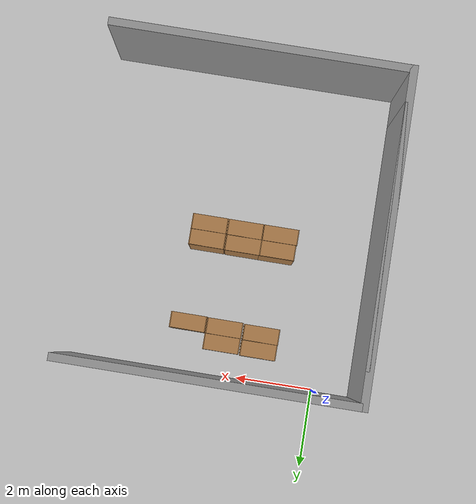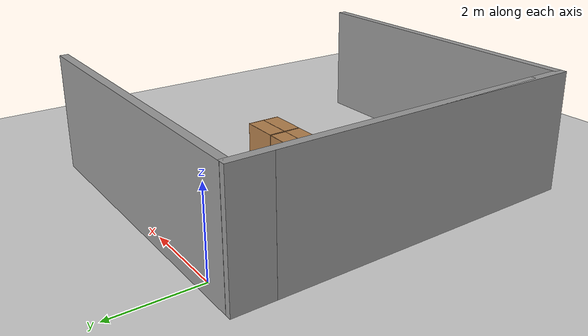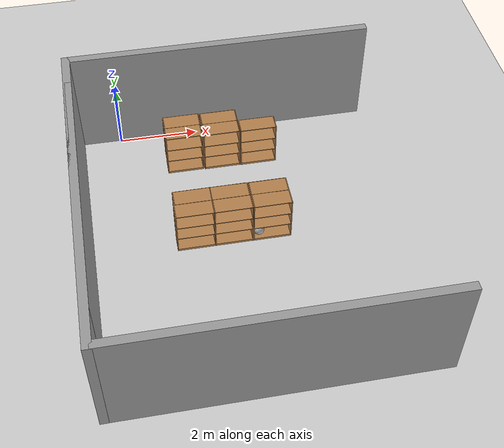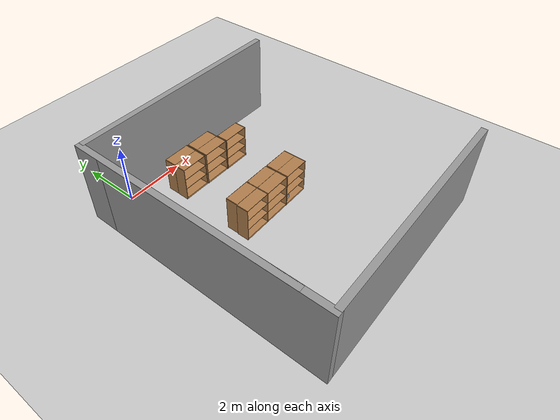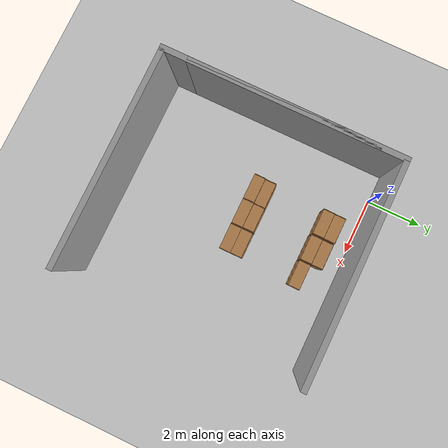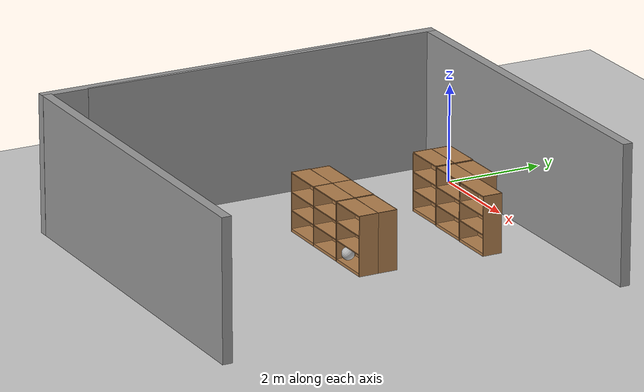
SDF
<sdf version="1.6">
 <world name="default">
  <model name="ground_plane">
   <static>1</static>
   <link name="link">
    <collision name="collision">
     <geometry><plane><normal>0 0 1</normal><size>100 100</size></plane></geometry>
     <surface><friction><ode><mu>100</mu><mu2>50</mu2></ode></friction></surface>
    </collision>
    <visual name="visual">
     <cast_shadows>0</cast_shadows>
     <geometry><plane><normal>0 0 1</normal><size>100 100</size></plane></geometry>
     <material>
      <script><uri>file://media/materials/scripts/gazebo.material</uri><name>Gazebo/Grey</name></script>
     </material>
    </visual>
   </link>
  </model>
  <model name="bookshelf">
   <static>1</static>
   <link name="link">
    <inertial><mass>1</mass></inertial>
    <collision name="back">
     <pose>0 0.005 0.6 0 -0 0</pose>
     <geometry><box><size>0.9 0.01 1.2</size></box></geometry>
    </collision>
    <visual name="visual1">
     <pose>0 0.005 0.6 0 -0 0</pose>
     <geometry><box><size>0.9 0.01 1.2</size></box></geometry>
     <material>
      <script><uri>file://media/materials/scripts/gazebo.material</uri><name>Gazebo/Wood</name></script>
     </material>
    </visual>
    <collision name="left_side">
     <pose>0.45 -0.195 0.6 0 -0 0</pose>
     <geometry><box><size>0.02 0.4 1.2</size></box></geometry>
    </collision>
    <visual name="visual2">
     <pose>0.45 -0.195 0.6 0 -0 0</pose>
     <geometry><box><size>0.02 0.4 1.2</size></box></geometry>
     <material>
      <script><uri>file://media/materials/scripts/gazebo.material</uri><name>Gazebo/Wood</name></script>
     </material>
    </visual>
    <collision name="right_side">
     <pose>-0.45 -0.195 0.6 0 -0 0</pose>
     <geometry><box><size>0.02 0.4 1.2</size></box></geometry>
    </collision>
    <visual name="visual3">
     <pose>-0.45 -0.195 0.6 0 -0 0</pose>
     <geometry><box><size>0.02 0.4 1.2</size></box></geometry>
     <material>
      <script><uri>file://media/materials/scripts/gazebo.material</uri><name>Gazebo/Wood</name></script>
     </material>
    </visual>
    <collision name="bottom">
     <pose>0 -0.195 0.03 0 -0 0</pose>
     <geometry><box><size>0.88 0.4 0.06</size></box></geometry>
    </collision>
    <visual name="visual4">
     <pose>0 -0.195 0.03 0 -0 0</pose>
     <geometry><box><size>0.88 0.4 0.06</size></box></geometry>
     <material>
      <script><uri>file://media/materials/scripts/gazebo.material</uri><name>Gazebo/Wood</name></script>
     </material>
    </visual>
    <collision name="top">
     <pose>0 -0.195 1.19 0 -0 0</pose>
     <geometry><box><size>0.88 0.4 0.02</size></box></geometry>
    </collision>
    <visual name="visual5">
     <pose>0 -0.195 1.19 0 -0 0</pose>
     <geometry><box><size>0.88 0.4 0.02</size></box></geometry>
     <material>
      <script><uri>file://media/materials/scripts/gazebo.material</uri><name>Gazebo/Wood</name></script>
     </material>
    </visual>
    <collision name="low_shelf">
     <pose>0 -0.195 0.43 0 -0 0</pose>
     <geometry><box><size>0.88 0.4 0.02</size></box></geometry>
    </collision>
    <visual name="visual6">
     <pose>0 -0.195 0.43 0 -0 0</pose>
     <geometry><box><size>0.88 0.4 0.02</size></box></geometry>
     <material>
      <script><uri>file://media/materials/scripts/gazebo.material</uri><name>Gazebo/Wood</name></script>
     </material>
    </visual>
    <collision name="high_shelf">
     <pose>0 -0.195 0.8 0 -0 0</pose>
     <geometry><box><size>0.88 0.4 0.02</size></box></geometry>
    </collision>
    <visual name="visual7">
     <pose>0 -0.195 0.8 0 -0 0</pose>
     <geometry><box><size>0.88 0.4 0.02</size></box></geometry>
     <material>
      <script><uri>file://media/materials/scripts/gazebo.material</uri><name>Gazebo/Wood</name></script>
     </material>
    </visual>
   </link>
   <pose>1.54815 -1.01147 0 0 -0 0</pose>
  </model>
  <model name="bookshelf_clone">
   <static>1</static>
   <link name="link">
    <inertial><mass>1</mass></inertial>
    <collision name="back">
     <pose>0 0.005 0.6 0 -0 0</pose>
     <geometry><box><size>0.9 0.01 1.2</size></box></geometry>
    </collision>
    <visual name="visual1">
     <pose>0 0.005 0.6 0 -0 0</pose>
     <geometry><box><size>0.9 0.01 1.2</size></box></geometry>
     <material>
      <script><uri>file://media/materials/scripts/gazebo.material</uri><name>Gazebo/Wood</name></script>
     </material>
    </visual>
    <collision name="left_side">
     <pose>0.45 -0.195 0.6 0 -0 0</pose>
     <geometry><box><size>0.02 0.4 1.2</size></box></geometry>
    </collision>
    <visual name="visual2">
     <pose>0.45 -0.195 0.6 0 -0 0</pose>
     <geometry><box><size>0.02 0.4 1.2</size></box></geometry>
     <material>
      <script><uri>file://media/materials/scripts/gazebo.material</uri><name>Gazebo/Wood</name></script>
     </material>
    </visual>
    <collision name="right_side">
     <pose>-0.45 -0.195 0.6 0 -0 0</pose>
     <geometry><box><size>0.02 0.4 1.2</size></box></geometry>
    </collision>
    <visual name="visual3">
     <pose>-0.45 -0.195 0.6 0 -0 0</pose>
     <geometry><box><size>0.02 0.4 1.2</size></box></geometry>
     <material>
      <script><uri>file://media/materials/scripts/gazebo.material</uri><name>Gazebo/Wood</name></script>
     </material>
    </visual>
    <collision name="bottom">
     <pose>0 -0.195 0.03 0 -0 0</pose>
     <geometry><box><size>0.88 0.4 0.06</size></box></geometry>
    </collision>
    <visual name="visual4">
     <pose>0 -0.195 0.03 0 -0 0</pose>
     <geometry><box><size>0.88 0.4 0.06</size></box></geometry>
     <material>
      <script><uri>file://media/materials/scripts/gazebo.material</uri><name>Gazebo/Wood</name></script>
     </material>
    </visual>
    <collision name="top">
     <pose>0 -0.195 1.19 0 -0 0</pose>
     <geometry><box><size>0.88 0.4 0.02</size></box></geometry>
    </collision>
    <visual name="visual5">
     <pose>0 -0.195 1.19 0 -0 0</pose>
     <geometry><box><size>0.88 0.4 0.02</size></box></geometry>
     <material>
      <script><uri>file://media/materials/scripts/gazebo.material</uri><name>Gazebo/Wood</name></script>
     </material>
    </visual>
    <collision name="low_shelf">
     <pose>0 -0.195 0.43 0 -0 0</pose>
     <geometry><box><size>0.88 0.4 0.02</size></box></geometry>
    </collision>
    <visual name="visual6">
     <pose>0 -0.195 0.43 0 -0 0</pose>
     <geometry><box><size>0.88 0.4 0.02</size></box></geometry>
     <material>
      <script><uri>file://media/materials/scripts/gazebo.material</uri><name>Gazebo/Wood</name></script>
     </material>
    </visual>
    <collision name="high_shelf">
     <pose>0 -0.195 0.8 0 -0 0</pose>
     <geometry><box><size>0.88 0.4 0.02</size></box></geometry>
    </collision>
    <visual name="visual7">
     <pose>0 -0.195 0.8 0 -0 0</pose>
     <geometry><box><size>0.88 0.4 0.02</size></box></geometry>
     <material>
      <script><uri>file://media/materials/scripts/gazebo.material</uri><name>Gazebo/Wood</name></script>
     </material>
    </visual>
   </link>
   <pose>2.49358 -1.02826 0 0 -0 0</pose>
  </model>
  <model name="bookshelf_clone_0">
   <static>1</static>
   <link name="link">
    <inertial><mass>1</mass></inertial>
    <collision name="back">
     <pose>0 0.005 0.6 0 -0 0</pose>
     <geometry><box><size>0.9 0.01 1.2</size></box></geometry>
    </collision>
    <visual name="visual1">
     <pose>0 0.005 0.6 0 -0 0</pose>
     <geometry><box><size>0.9 0.01 1.2</size></box></geometry>
     <material>
      <script><uri>file://media/materials/scripts/gazebo.material</uri><name>Gazebo/Wood</name></script>
     </material>
    </visual>
    <collision name="left_side">
     <pose>0.45 -0.195 0.6 0 -0 0</pose>
     <geometry><box><size>0.02 0.4 1.2</size></box></geometry>
    </collision>
    <visual name="visual2">
     <pose>0.45 -0.195 0.6 0 -0 0</pose>
     <geometry><box><size>0.02 0.4 1.2</size></box></geometry>
     <material>
      <script><uri>file://media/materials/scripts/gazebo.material</uri><name>Gazebo/Wood</name></script>
     </material>
    </visual>
    <collision name="right_side">
     <pose>-0.45 -0.195 0.6 0 -0 0</pose>
     <geometry><box><size>0.02 0.4 1.2</size></box></geometry>
    </collision>
    <visual name="visual3">
     <pose>-0.45 -0.195 0.6 0 -0 0</pose>
     <geometry><box><size>0.02 0.4 1.2</size></box></geometry>
     <material>
      <script><uri>file://media/materials/scripts/gazebo.material</uri><name>Gazebo/Wood</name></script>
     </material>
    </visual>
    <collision name="bottom">
     <pose>0 -0.195 0.03 0 -0 0</pose>
     <geometry><box><size>0.88 0.4 0.06</size></box></geometry>
    </collision>
    <visual name="visual4">
     <pose>0 -0.195 0.03 0 -0 0</pose>
     <geometry><box><size>0.88 0.4 0.06</size></box></geometry>
     <material>
      <script><uri>file://media/materials/scripts/gazebo.material</uri><name>Gazebo/Wood</name></script>
     </material>
    </visual>
    <collision name="top">
     <pose>0 -0.195 1.19 0 -0 0</pose>
     <geometry><box><size>0.88 0.4 0.02</size></box></geometry>
    </collision>
    <visual name="visual5">
     <pose>0 -0.195 1.19 0 -0 0</pose>
     <geometry><box><size>0.88 0.4 0.02</size></box></geometry>
     <material>
      <script><uri>file://media/materials/scripts/gazebo.material</uri><name>Gazebo/Wood</name></script>
     </material>
    </visual>
    <collision name="low_shelf">
     <pose>0 -0.195 0.43 0 -0 0</pose>
     <geometry><box><size>0.88 0.4 0.02</size></box></geometry>
    </collision>
    <visual name="visual6">
     <pose>0 -0.195 0.43 0 -0 0</pose>
     <geometry><box><size>0.88 0.4 0.02</size></box></geometry>
     <material>
      <script><uri>file://media/materials/scripts/gazebo.material</uri><name>Gazebo/Wood</name></script>
     </material>
    </visual>
    <collision name="high_shelf">
     <pose>0 -0.195 0.8 0 -0 0</pose>
     <geometry><box><size>0.88 0.4 0.02</size></box></geometry>
    </collision>
    <visual name="visual7">
     <pose>0 -0.195 0.8 0 -0 0</pose>
     <geometry><box><size>0.88 0.4 0.02</size></box></geometry>
     <material>
      <script><uri>file://media/materials/scripts/gazebo.material</uri><name>Gazebo/Wood</name></script>
     </material>
    </visual>
   </link>
   <pose>3.42671 -1.03872 0 0 -0 0</pose>
  </model>
  <model name="bookshelf_clone_3">
   <static>1</static>
   <link name="link">
    <inertial><mass>1</mass></inertial>
    <collision name="back">
     <pose>0 0.005 0.6 0 -0 0</pose>
     <geometry><box><size>0.9 0.01 1.2</size></box></geometry>
    </collision>
    <visual name="visual1">
     <pose>0 0.005 0.6 0 -0 0</pose>
     <geometry><box><size>0.9 0.01 1.2</size></box></geometry>
     <material>
      <script><uri>file://media/materials/scripts/gazebo.material</uri><name>Gazebo/Wood</name></script>
     </material>
    </visual>
    <collision name="left_side">
     <pose>0.45 -0.195 0.6 0 -0 0</pose>
     <geometry><box><size>0.02 0.4 1.2</size></box></geometry>
    </collision>
    <visual name="visual2">
     <pose>0.45 -0.195 0.6 0 -0 0</pose>
     <geometry><box><size>0.02 0.4 1.2</size></box></geometry>
     <material>
      <script><uri>file://media/materials/scripts/gazebo.material</uri><name>Gazebo/Wood</name></script>
     </material>
    </visual>
    <collision name="right_side">
     <pose>-0.45 -0.195 0.6 0 -0 0</pose>
     <geometry><box><size>0.02 0.4 1.2</size></box></geometry>
    </collision>
    <visual name="visual3">
     <pose>-0.45 -0.195 0.6 0 -0 0</pose>
     <geometry><box><size>0.02 0.4 1.2</size></box></geometry>
     <material>
      <script><uri>file://media/materials/scripts/gazebo.material</uri><name>Gazebo/Wood</name></script>
     </material>
    </visual>
    <collision name="bottom">
     <pose>0 -0.195 0.03 0 -0 0</pose>
     <geometry><box><size>0.88 0.4 0.06</size></box></geometry>
    </collision>
    <visual name="visual4">
     <pose>0 -0.195 0.03 0 -0 0</pose>
     <geometry><box><size>0.88 0.4 0.06</size></box></geometry>
     <material>
      <script><uri>file://media/materials/scripts/gazebo.material</uri><name>Gazebo/Wood</name></script>
     </material>
    </visual>
    <collision name="top">
     <pose>0 -0.195 1.19 0 -0 0</pose>
     <geometry><box><size>0.88 0.4 0.02</size></box></geometry>
    </collision>
    <visual name="visual5">
     <pose>0 -0.195 1.19 0 -0 0</pose>
     <geometry><box><size>0.88 0.4 0.02</size></box></geometry>
     <material>
      <script><uri>file://media/materials/scripts/gazebo.material</uri><name>Gazebo/Wood</name></script>
     </material>
    </visual>
    <collision name="low_shelf">
     <pose>0 -0.195 0.43 0 -0 0</pose>
     <geometry><box><size>0.88 0.4 0.02</size></box></geometry>
    </collision>
    <visual name="visual6">
     <pose>0 -0.195 0.43 0 -0 0</pose>
     <geometry><box><size>0.88 0.4 0.02</size></box></geometry>
     <material>
      <script><uri>file://media/materials/scripts/gazebo.material</uri><name>Gazebo/Wood</name></script>
     </material>
    </visual>
    <collision name="high_shelf">
     <pose>0 -0.195 0.8 0 -0 0</pose>
     <geometry><box><size>0.88 0.4 0.02</size></box></geometry>
    </collision>
    <visual name="visual7">
     <pose>0 -0.195 0.8 0 -0 0</pose>
     <geometry><box><size>0.88 0.4 0.02</size></box></geometry>
     <material>
      <script><uri>file://media/materials/scripts/gazebo.material</uri><name>Gazebo/Wood</name></script>
     </material>
    </visual>
   </link>
   <pose>1.45828 -3.59625 0 0 -0 0</pose>
  </model>
  <model name="bookshelf_clone_4">
   <static>1</static>
   <link name="link">
    <inertial><mass>1</mass></inertial>
    <collision name="back">
     <pose>0 0.005 0.6 0 -0 0</pose>
     <geometry><box><size>0.9 0.01 1.2</size></box></geometry>
    </collision>
    <visual name="visual1">
     <pose>0 0.005 0.6 0 -0 0</pose>
     <geometry><box><size>0.9 0.01 1.2</size></box></geometry>
     <material>
      <script><uri>file://media/materials/scripts/gazebo.material</uri><name>Gazebo/Wood</name></script>
     </material>
    </visual>
    <collision name="left_side">
     <pose>0.45 -0.195 0.6 0 -0 0</pose>
     <geometry><box><size>0.02 0.4 1.2</size></box></geometry>
    </collision>
    <visual name="visual2">
     <pose>0.45 -0.195 0.6 0 -0 0</pose>
     <geometry><box><size>0.02 0.4 1.2</size></box></geometry>
     <material>
      <script><uri>file://media/materials/scripts/gazebo.material</uri><name>Gazebo/Wood</name></script>
     </material>
    </visual>
    <collision name="right_side">
     <pose>-0.45 -0.195 0.6 0 -0 0</pose>
     <geometry><box><size>0.02 0.4 1.2</size></box></geometry>
    </collision>
    <visual name="visual3">
     <pose>-0.45 -0.195 0.6 0 -0 0</pose>
     <geometry><box><size>0.02 0.4 1.2</size></box></geometry>
     <material>
      <script><uri>file://media/materials/scripts/gazebo.material</uri><name>Gazebo/Wood</name></script>
     </material>
    </visual>
    <collision name="bottom">
     <pose>0 -0.195 0.03 0 -0 0</pose>
     <geometry><box><size>0.88 0.4 0.06</size></box></geometry>
    </collision>
    <visual name="visual4">
     <pose>0 -0.195 0.03 0 -0 0</pose>
     <geometry><box><size>0.88 0.4 0.06</size></box></geometry>
     <material>
      <script><uri>file://media/materials/scripts/gazebo.material</uri><name>Gazebo/Wood</name></script>
     </material>
    </visual>
    <collision name="top">
     <pose>0 -0.195 1.19 0 -0 0</pose>
     <geometry><box><size>0.88 0.4 0.02</size></box></geometry>
    </collision>
    <visual name="visual5">
     <pose>0 -0.195 1.19 0 -0 0</pose>
     <geometry><box><size>0.88 0.4 0.02</size></box></geometry>
     <material>
      <script><uri>file://media/materials/scripts/gazebo.material</uri><name>Gazebo/Wood</name></script>
     </material>
    </visual>
    <collision name="low_shelf">
     <pose>0 -0.195 0.43 0 -0 0</pose>
     <geometry><box><size>0.88 0.4 0.02</size></box></geometry>
    </collision>
    <visual name="visual6">
     <pose>0 -0.195 0.43 0 -0 0</pose>
     <geometry><box><size>0.88 0.4 0.02</size></box></geometry>
     <material>
      <script><uri>file://media/materials/scripts/gazebo.material</uri><name>Gazebo/Wood</name></script>
     </material>
    </visual>
    <collision name="high_shelf">
     <pose>0 -0.195 0.8 0 -0 0</pose>
     <geometry><box><size>0.88 0.4 0.02</size></box></geometry>
    </collision>
    <visual name="visual7">
     <pose>0 -0.195 0.8 0 -0 0</pose>
     <geometry><box><size>0.88 0.4 0.02</size></box></geometry>
     <material>
      <script><uri>file://media/materials/scripts/gazebo.material</uri><name>Gazebo/Wood</name></script>
     </material>
    </visual>
   </link>
   <pose>2.36721 -3.5964 0 0 -0 0</pose>
  </model>
  <model name="bookshelf_clone_5">
   <static>1</static>
   <link name="link">
    <inertial><mass>1</mass></inertial>
    <collision name="back">
     <pose>0 0.005 0.6 0 -0 0</pose>
     <geometry><box><size>0.9 0.01 1.2</size></box></geometry>
    </collision>
    <visual name="visual1">
     <pose>0 0.005 0.6 0 -0 0</pose>
     <geometry><box><size>0.9 0.01 1.2</size></box></geometry>
     <material>
      <script><uri>file://media/materials/scripts/gazebo.material</uri><name>Gazebo/Wood</name></script>
     </material>
    </visual>
    <collision name="left_side">
     <pose>0.45 -0.195 0.6 0 -0 0</pose>
     <geometry><box><size>0.02 0.4 1.2</size></box></geometry>
    </collision>
    <visual name="visual2">
     <pose>0.45 -0.195 0.6 0 -0 0</pose>
     <geometry><box><size>0.02 0.4 1.2</size></box></geometry>
     <material>
      <script><uri>file://media/materials/scripts/gazebo.material</uri><name>Gazebo/Wood</name></script>
     </material>
    </visual>
    <collision name="right_side">
     <pose>-0.45 -0.195 0.6 0 -0 0</pose>
     <geometry><box><size>0.02 0.4 1.2</size></box></geometry>
    </collision>
    <visual name="visual3">
     <pose>-0.45 -0.195 0.6 0 -0 0</pose>
     <geometry><box><size>0.02 0.4 1.2</size></box></geometry>
     <material>
      <script><uri>file://media/materials/scripts/gazebo.material</uri><name>Gazebo/Wood</name></script>
     </material>
    </visual>
    <collision name="bottom">
     <pose>0 -0.195 0.03 0 -0 0</pose>
     <geometry><box><size>0.88 0.4 0.06</size></box></geometry>
    </collision>
    <visual name="visual4">
     <pose>0 -0.195 0.03 0 -0 0</pose>
     <geometry><box><size>0.88 0.4 0.06</size></box></geometry>
     <material>
      <script><uri>file://media/materials/scripts/gazebo.material</uri><name>Gazebo/Wood</name></script>
     </material>
    </visual>
    <collision name="top">
     <pose>0 -0.195 1.19 0 -0 0</pose>
     <geometry><box><size>0.88 0.4 0.02</size></box></geometry>
    </collision>
    <visual name="visual5">
     <pose>0 -0.195 1.19 0 -0 0</pose>
     <geometry><box><size>0.88 0.4 0.02</size></box></geometry>
     <material>
      <script><uri>file://media/materials/scripts/gazebo.material</uri><name>Gazebo/Wood</name></script>
     </material>
    </visual>
    <collision name="low_shelf">
     <pose>0 -0.195 0.43 0 -0 0</pose>
     <geometry><box><size>0.88 0.4 0.02</size></box></geometry>
    </collision>
    <visual name="visual6">
     <pose>0 -0.195 0.43 0 -0 0</pose>
     <geometry><box><size>0.88 0.4 0.02</size></box></geometry>
     <material>
      <script><uri>file://media/materials/scripts/gazebo.material</uri><name>Gazebo/Wood</name></script>
     </material>
    </visual>
    <collision name="high_shelf">
     <pose>0 -0.195 0.8 0 -0 0</pose>
     <geometry><box><size>0.88 0.4 0.02</size></box></geometry>
    </collision>
    <visual name="visual7">
     <pose>0 -0.195 0.8 0 -0 0</pose>
     <geometry><box><size>0.88 0.4 0.02</size></box></geometry>
     <material>
      <script><uri>file://media/materials/scripts/gazebo.material</uri><name>Gazebo/Wood</name></script>
     </material>
    </visual>
   </link>
   <pose>3.29215 -3.59972 0 0 -0 0</pose>
  </model>
  <model name="bookshelf_clone_10">
   <static>1</static>
   <link name="link">
    <inertial><mass>1</mass></inertial>
    <collision name="back">
     <pose>0 0.005 0.6 0 -0 0</pose>
     <geometry><box><size>0.9 0.01 1.2</size></box></geometry>
    </collision>
    <visual name="visual1">
     <pose>0 0.005 0.6 0 -0 0</pose>
     <geometry><box><size>0.9 0.01 1.2</size></box></geometry>
     <material>
      <script><uri>file://media/materials/scripts/gazebo.material</uri><name>Gazebo/Wood</name></script>
     </material>
    </visual>
    <collision name="left_side">
     <pose>0.45 -0.195 0.6 0 -0 0</pose>
     <geometry><box><size>0.02 0.4 1.2</size></box></geometry>
    </collision>
    <visual name="visual2">
     <pose>0.45 -0.195 0.6 0 -0 0</pose>
     <geometry><box><size>0.02 0.4 1.2</size></box></geometry>
     <material>
      <script><uri>file://media/materials/scripts/gazebo.material</uri><name>Gazebo/Wood</name></script>
     </material>
    </visual>
    <collision name="right_side">
     <pose>-0.45 -0.195 0.6 0 -0 0</pose>
     <geometry><box><size>0.02 0.4 1.2</size></box></geometry>
    </collision>
    <visual name="visual3">
     <pose>-0.45 -0.195 0.6 0 -0 0</pose>
     <geometry><box><size>0.02 0.4 1.2</size></box></geometry>
     <material>
      <script><uri>file://media/materials/scripts/gazebo.material</uri><name>Gazebo/Wood</name></script>
     </material>
    </visual>
    <collision name="bottom">
     <pose>0 -0.195 0.03 0 -0 0</pose>
     <geometry><box><size>0.88 0.4 0.06</size></box></geometry>
    </collision>
    <visual name="visual4">
     <pose>0 -0.195 0.03 0 -0 0</pose>
     <geometry><box><size>0.88 0.4 0.06</size></box></geometry>
     <material>
      <script><uri>file://media/materials/scripts/gazebo.material</uri><name>Gazebo/Wood</name></script>
     </material>
    </visual>
    <collision name="top">
     <pose>0 -0.195 1.19 0 -0 0</pose>
     <geometry><box><size>0.88 0.4 0.02</size></box></geometry>
    </collision>
    <visual name="visual5">
     <pose>0 -0.195 1.19 0 -0 0</pose>
     <geometry><box><size>0.88 0.4 0.02</size></box></geometry>
     <material>
      <script><uri>file://media/materials/scripts/gazebo.material</uri><name>Gazebo/Wood</name></script>
     </material>
    </visual>
    <collision name="low_shelf">
     <pose>0 -0.195 0.43 0 -0 0</pose>
     <geometry><box><size>0.88 0.4 0.02</size></box></geometry>
    </collision>
    <visual name="visual6">
     <pose>0 -0.195 0.43 0 -0 0</pose>
     <geometry><box><size>0.88 0.4 0.02</size></box></geometry>
     <material>
      <script><uri>file://media/materials/scripts/gazebo.material</uri><name>Gazebo/Wood</name></script>
     </material>
    </visual>
    <collision name="high_shelf">
     <pose>0 -0.195 0.8 0 -0 0</pose>
     <geometry><box><size>0.88 0.4 0.02</size></box></geometry>
    </collision>
    <visual name="visual7">
     <pose>0 -0.195 0.8 0 -0 0</pose>
     <geometry><box><size>0.88 0.4 0.02</size></box></geometry>
     <material>
      <script><uri>file://media/materials/scripts/gazebo.material</uri><name>Gazebo/Wood</name></script>
     </material>
    </visual>
   </link>
   <pose>3.29098 -3.20132 0 0 -0 0</pose>
  </model>
  <model name="bookshelf_clone_11">
   <static>1</static>
   <link name="link">
    <inertial><mass>1</mass></inertial>
    <collision name="back">
     <pose>0 0.005 0.6 0 -0 0</pose>
     <geometry><box><size>0.9 0.01 1.2</size></box></geometry>
    </collision>
    <visual name="visual1">
     <pose>0 0.005 0.6 0 -0 0</pose>
     <geometry><box><size>0.9 0.01 1.2</size></box></geometry>
     <material>
      <script><uri>file://media/materials/scripts/gazebo.material</uri><name>Gazebo/Wood</name></script>
     </material>
    </visual>
    <collision name="left_side">
     <pose>0.45 -0.195 0.6 0 -0 0</pose>
     <geometry><box><size>0.02 0.4 1.2</size></box></geometry>
    </collision>
    <visual name="visual2">
     <pose>0.45 -0.195 0.6 0 -0 0</pose>
     <geometry><box><size>0.02 0.4 1.2</size></box></geometry>
     <material>
      <script><uri>file://media/materials/scripts/gazebo.material</uri><name>Gazebo/Wood</name></script>
     </material>
    </visual>
    <collision name="right_side">
     <pose>-0.45 -0.195 0.6 0 -0 0</pose>
     <geometry><box><size>0.02 0.4 1.2</size></box></geometry>
    </collision>
    <visual name="visual3">
     <pose>-0.45 -0.195 0.6 0 -0 0</pose>
     <geometry><box><size>0.02 0.4 1.2</size></box></geometry>
     <material>
      <script><uri>file://media/materials/scripts/gazebo.material</uri><name>Gazebo/Wood</name></script>
     </material>
    </visual>
    <collision name="bottom">
     <pose>0 -0.195 0.03 0 -0 0</pose>
     <geometry><box><size>0.88 0.4 0.06</size></box></geometry>
    </collision>
    <visual name="visual4">
     <pose>0 -0.195 0.03 0 -0 0</pose>
     <geometry><box><size>0.88 0.4 0.06</size></box></geometry>
     <material>
      <script><uri>file://media/materials/scripts/gazebo.material</uri><name>Gazebo/Wood</name></script>
     </material>
    </visual>
    <collision name="top">
     <pose>0 -0.195 1.19 0 -0 0</pose>
     <geometry><box><size>0.88 0.4 0.02</size></box></geometry>
    </collision>
    <visual name="visual5">
     <pose>0 -0.195 1.19 0 -0 0</pose>
     <geometry><box><size>0.88 0.4 0.02</size></box></geometry>
     <material>
      <script><uri>file://media/materials/scripts/gazebo.material</uri><name>Gazebo/Wood</name></script>
     </material>
    </visual>
    <collision name="low_shelf">
     <pose>0 -0.195 0.43 0 -0 0</pose>
     <geometry><box><size>0.88 0.4 0.02</size></box></geometry>
    </collision>
    <visual name="visual6">
     <pose>0 -0.195 0.43 0 -0 0</pose>
     <geometry><box><size>0.88 0.4 0.02</size></box></geometry>
     <material>
      <script><uri>file://media/materials/scripts/gazebo.material</uri><name>Gazebo/Wood</name></script>
     </material>
    </visual>
    <collision name="high_shelf">
     <pose>0 -0.195 0.8 0 -0 0</pose>
     <geometry><box><size>0.88 0.4 0.02</size></box></geometry>
    </collision>
    <visual name="visual7">
     <pose>0 -0.195 0.8 0 -0 0</pose>
     <geometry><box><size>0.88 0.4 0.02</size></box></geometry>
     <material>
      <script><uri>file://media/materials/scripts/gazebo.material</uri><name>Gazebo/Wood</name></script>
     </material>
    </visual>
   </link>
   <pose>2.36065 -3.19485 0 0 -0 0</pose>
  </model>
  <model name="bookshelf_clone_12">
   <static>1</static>
   <link name="link">
    <inertial><mass>1</mass></inertial>
    <collision name="back">
     <pose>0 0.005 0.6 0 -0 0</pose>
     <geometry><box><size>0.9 0.01 1.2</size></box></geometry>
    </collision>
    <visual name="visual1">
     <pose>0 0.005 0.6 0 -0 0</pose>
     <geometry><box><size>0.9 0.01 1.2</size></box></geometry>
     <material>
      <script><uri>file://media/materials/scripts/gazebo.material</uri><name>Gazebo/Wood</name></script>
     </material>
    </visual>
    <collision name="left_side">
     <pose>0.45 -0.195 0.6 0 -0 0</pose>
     <geometry><box><size>0.02 0.4 1.2</size></box></geometry>
    </collision>
    <visual name="visual2">
     <pose>0.45 -0.195 0.6 0 -0 0</pose>
     <geometry><box><size>0.02 0.4 1.2</size></box></geometry>
     <material>
      <script><uri>file://media/materials/scripts/gazebo.material</uri><name>Gazebo/Wood</name></script>
     </material>
    </visual>
    <collision name="right_side">
     <pose>-0.45 -0.195 0.6 0 -0 0</pose>
     <geometry><box><size>0.02 0.4 1.2</size></box></geometry>
    </collision>
    <visual name="visual3">
     <pose>-0.45 -0.195 0.6 0 -0 0</pose>
     <geometry><box><size>0.02 0.4 1.2</size></box></geometry>
     <material>
      <script><uri>file://media/materials/scripts/gazebo.material</uri><name>Gazebo/Wood</name></script>
     </material>
    </visual>
    <collision name="bottom">
     <pose>0 -0.195 0.03 0 -0 0</pose>
     <geometry><box><size>0.88 0.4 0.06</size></box></geometry>
    </collision>
    <visual name="visual4">
     <pose>0 -0.195 0.03 0 -0 0</pose>
     <geometry><box><size>0.88 0.4 0.06</size></box></geometry>
     <material>
      <script><uri>file://media/materials/scripts/gazebo.material</uri><name>Gazebo/Wood</name></script>
     </material>
    </visual>
    <collision name="top">
     <pose>0 -0.195 1.19 0 -0 0</pose>
     <geometry><box><size>0.88 0.4 0.02</size></box></geometry>
    </collision>
    <visual name="visual5">
     <pose>0 -0.195 1.19 0 -0 0</pose>
     <geometry><box><size>0.88 0.4 0.02</size></box></geometry>
     <material>
      <script><uri>file://media/materials/scripts/gazebo.material</uri><name>Gazebo/Wood</name></script>
     </material>
    </visual>
    <collision name="low_shelf">
     <pose>0 -0.195 0.43 0 -0 0</pose>
     <geometry><box><size>0.88 0.4 0.02</size></box></geometry>
    </collision>
    <visual name="visual6">
     <pose>0 -0.195 0.43 0 -0 0</pose>
     <geometry><box><size>0.88 0.4 0.02</size></box></geometry>
     <material>
      <script><uri>file://media/materials/scripts/gazebo.material</uri><name>Gazebo/Wood</name></script>
     </material>
    </visual>
    <collision name="high_shelf">
     <pose>0 -0.195 0.8 0 -0 0</pose>
     <geometry><box><size>0.88 0.4 0.02</size></box></geometry>
    </collision>
    <visual name="visual7">
     <pose>0 -0.195 0.8 0 -0 0</pose>
     <geometry><box><size>0.88 0.4 0.02</size></box></geometry>
     <material>
      <script><uri>file://media/materials/scripts/gazebo.material</uri><name>Gazebo/Wood</name></script>
     </material>
    </visual>
   </link>
   <pose>1.47675 -3.1929 0 0 -0 0</pose>
  </model>
  <model name="bookshelf_clone_13">
   <static>1</static>
   <link name="link">
    <inertial><mass>1</mass></inertial>
    <collision name="back">
     <pose>0 0.005 0.6 0 -0 0</pose>
     <geometry><box><size>0.9 0.01 1.2</size></box></geometry>
    </collision>
    <visual name="visual1">
     <pose>0 0.005 0.6 0 -0 0</pose>
     <geometry><box><size>0.9 0.01 1.2</size></box></geometry>
     <material>
      <script><uri>file://media/materials/scripts/gazebo.material</uri><name>Gazebo/Wood</name></script>
     </material>
    </visual>
    <collision name="left_side">
     <pose>0.45 -0.195 0.6 0 -0 0</pose>
     <geometry><box><size>0.02 0.4 1.2</size></box></geometry>
    </collision>
    <visual name="visual2">
     <pose>0.45 -0.195 0.6 0 -0 0</pose>
     <geometry><box><size>0.02 0.4 1.2</size></box></geometry>
     <material>
      <script><uri>file://media/materials/scripts/gazebo.material</uri><name>Gazebo/Wood</name></script>
     </material>
    </visual>
    <collision name="right_side">
     <pose>-0.45 -0.195 0.6 0 -0 0</pose>
     <geometry><box><size>0.02 0.4 1.2</size></box></geometry>
    </collision>
    <visual name="visual3">
     <pose>-0.45 -0.195 0.6 0 -0 0</pose>
     <geometry><box><size>0.02 0.4 1.2</size></box></geometry>
     <material>
      <script><uri>file://media/materials/scripts/gazebo.material</uri><name>Gazebo/Wood</name></script>
     </material>
    </visual>
    <collision name="bottom">
     <pose>0 -0.195 0.03 0 -0 0</pose>
     <geometry><box><size>0.88 0.4 0.06</size></box></geometry>
    </collision>
    <visual name="visual4">
     <pose>0 -0.195 0.03 0 -0 0</pose>
     <geometry><box><size>0.88 0.4 0.06</size></box></geometry>
     <material>
      <script><uri>file://media/materials/scripts/gazebo.material</uri><name>Gazebo/Wood</name></script>
     </material>
    </visual>
    <collision name="top">
     <pose>0 -0.195 1.19 0 -0 0</pose>
     <geometry><box><size>0.88 0.4 0.02</size></box></geometry>
    </collision>
    <visual name="visual5">
     <pose>0 -0.195 1.19 0 -0 0</pose>
     <geometry><box><size>0.88 0.4 0.02</size></box></geometry>
     <material>
      <script><uri>file://media/materials/scripts/gazebo.material</uri><name>Gazebo/Wood</name></script>
     </material>
    </visual>
    <collision name="low_shelf">
     <pose>0 -0.195 0.43 0 -0 0</pose>
     <geometry><box><size>0.88 0.4 0.02</size></box></geometry>
    </collision>
    <visual name="visual6">
     <pose>0 -0.195 0.43 0 -0 0</pose>
     <geometry><box><size>0.88 0.4 0.02</size></box></geometry>
     <material>
      <script><uri>file://media/materials/scripts/gazebo.material</uri><name>Gazebo/Wood</name></script>
     </material>
    </visual>
    <collision name="high_shelf">
     <pose>0 -0.195 0.8 0 -0 0</pose>
     <geometry><box><size>0.88 0.4 0.02</size></box></geometry>
    </collision>
    <visual name="visual7">
     <pose>0 -0.195 0.8 0 -0 0</pose>
     <geometry><box><size>0.88 0.4 0.02</size></box></geometry>
     <material>
      <script><uri>file://media/materials/scripts/gazebo.material</uri><name>Gazebo/Wood</name></script>
     </material>
    </visual>
   </link>
   <pose>1.55537 -0.609044 0 0 -0 0</pose>
  </model>
  <model name="bookshelf_clone_14">
   <static>1</static>
   <link name="link">
    <inertial><mass>1</mass></inertial>
    <collision name="back">
     <pose>0 0.005 0.6 0 -0 0</pose>
     <geometry><box><size>0.9 0.01 1.2</size></box></geometry>
    </collision>
    <visual name="visual1">
     <pose>0 0.005 0.6 0 -0 0</pose>
     <geometry><box><size>0.9 0.01 1.2</size></box></geometry>
     <material>
      <script><uri>file://media/materials/scripts/gazebo.material</uri><name>Gazebo/Wood</name></script>
     </material>
    </visual>
    <collision name="left_side">
     <pose>0.45 -0.195 0.6 0 -0 0</pose>
     <geometry><box><size>0.02 0.4 1.2</size></box></geometry>
    </collision>
    <visual name="visual2">
     <pose>0.45 -0.195 0.6 0 -0 0</pose>
     <geometry><box><size>0.02 0.4 1.2</size></box></geometry>
     <material>
      <script><uri>file://media/materials/scripts/gazebo.material</uri><name>Gazebo/Wood</name></script>
     </material>
    </visual>
    <collision name="right_side">
     <pose>-0.45 -0.195 0.6 0 -0 0</pose>
     <geometry><box><size>0.02 0.4 1.2</size></box></geometry>
    </collision>
    <visual name="visual3">
     <pose>-0.45 -0.195 0.6 0 -0 0</pose>
     <geometry><box><size>0.02 0.4 1.2</size></box></geometry>
     <material>
      <script><uri>file://media/materials/scripts/gazebo.material</uri><name>Gazebo/Wood</name></script>
     </material>
    </visual>
    <collision name="bottom">
     <pose>0 -0.195 0.03 0 -0 0</pose>
     <geometry><box><size>0.88 0.4 0.06</size></box></geometry>
    </collision>
    <visual name="visual4">
     <pose>0 -0.195 0.03 0 -0 0</pose>
     <geometry><box><size>0.88 0.4 0.06</size></box></geometry>
     <material>
      <script><uri>file://media/materials/scripts/gazebo.material</uri><name>Gazebo/Wood</name></script>
     </material>
    </visual>
    <collision name="top">
     <pose>0 -0.195 1.19 0 -0 0</pose>
     <geometry><box><size>0.88 0.4 0.02</size></box></geometry>
    </collision>
    <visual name="visual5">
     <pose>0 -0.195 1.19 0 -0 0</pose>
     <geometry><box><size>0.88 0.4 0.02</size></box></geometry>
     <material>
      <script><uri>file://media/materials/scripts/gazebo.material</uri><name>Gazebo/Wood</name></script>
     </material>
    </visual>
    <collision name="low_shelf">
     <pose>0 -0.195 0.43 0 -0 0</pose>
     <geometry><box><size>0.88 0.4 0.02</size></box></geometry>
    </collision>
    <visual name="visual6">
     <pose>0 -0.195 0.43 0 -0 0</pose>
     <geometry><box><size>0.88 0.4 0.02</size></box></geometry>
     <material>
      <script><uri>file://media/materials/scripts/gazebo.material</uri><name>Gazebo/Wood</name></script>
     </material>
    </visual>
    <collision name="high_shelf">
     <pose>0 -0.195 0.8 0 -0 0</pose>
     <geometry><box><size>0.88 0.4 0.02</size></box></geometry>
    </collision>
    <visual name="visual7">
     <pose>0 -0.195 0.8 0 -0 0</pose>
     <geometry><box><size>0.88 0.4 0.02</size></box></geometry>
     <material>
      <script><uri>file://media/materials/scripts/gazebo.material</uri><name>Gazebo/Wood</name></script>
     </material>
    </visual>
   </link>
   <pose>2.50084 -0.625465 0 0 -0 0</pose>
  </model>
  <model name="frc2016_ball">
   <pose>2.988 -3.82355 0.186442 2.15604 -0 0</pose>
   <link name="link">
    <inertial>
     <mass>0.213</mass>
     <inertia>
      <ixx>0.00322667</ixx>
      <ixy>0</ixy>
      <ixz>0</ixz>
      <iyy>0.00322667</iyy>
      <iyz>0</iyz>
      <izz>0.00322667</izz>
     </inertia>
    </inertial>
    <visual name="visual"><geometry><sphere><radius>0.127</radius></sphere></geometry></visual>
    <collision name="collision">
     <geometry><sphere><radius>0.127</radius></sphere></geometry>
     <surface>
      <bounce><restitution_coefficient>0.15937</restitution_coefficient><threshold>0</threshold></bounce>
      <contact><ode><max_vel>100</max_vel><min_depth>0.001</min_depth></ode></contact>
     </surface>
    </collision>
   </link>
  </model>
  <model name="grey_wall">
   <static>1</static>
   <link name="link">
    <pose>0 0 1.4 0 -0 0</pose>
    <collision name="collision"><geometry><box><size>7.5 0.2 2.8</size></box></geometry></collision>
    <visual name="visual">
     <cast_shadows>0</cast_shadows>
     <geometry><box><size>7.5 0.2 2.8</size></box></geometry>
     <material>
      <script>
       <uri>model://grey_wall/materials/scripts</uri>
       <uri>model://grey_wall/materials/textures</uri>
       <name>vrc/grey_wall</name>
      </script>
     </material>
    </visual>
   </link>
   <pose>2.71842 0.127306 0 0 -0 0</pose>
  </model>
  <model name="grey_wall_clone_0">
   <static>1</static>
   <link name="link">
    <pose>0 0 1.4 0 -0 0</pose>
    <collision name="collision"><geometry><box><size>7.5 0.2 2.8</size></box></geometry></collision>
    <visual name="visual">
     <cast_shadows>0</cast_shadows>
     <geometry><box><size>7.5 0.2 2.8</size></box></geometry>
     <material>
      <script>
       <uri>model://grey_wall/materials/scripts</uri>
       <uri>model://grey_wall/materials/textures</uri>
       <name>vrc/grey_wall</name>
      </script>
     </material>
    </visual>
   </link>
   <pose>2.72311 -8.11578 0 0 -0 0</pose>
  </model>
  <model name="grey_wall_clone_clone_clone_0">
   <static>1</static>
   <link name="link">
    <pose>0 0 1.4 0 -0 0</pose>
    <collision name="collision"><geometry><box><size>7.5 0.2 2.8</size></box></geometry></collision>
    <visual name="visual">
     <cast_shadows>0</cast_shadows>
     <geometry><box><size>7.5 0.2 2.8</size></box></geometry>
     <material>
      <script>
       <uri>model://grey_wall/materials/scripts</uri>
       <uri>model://grey_wall/materials/textures</uri>
       <name>vrc/grey_wall</name>
      </script>
     </material>
    </visual>
   </link>
   <pose>-1.06891 -3.52662 0 0 0 -1.57006</pose>
  </model>
  <model name="grey_wall_clone_clone_clone_1">
   <static>1</static>
   <link name="link">
    <pose>0 0 1.4 0 -0 0</pose>
    <collision name="collision"><geometry><box><size>7.5 0.2 2.8</size></box></geometry></collision>
    <visual name="visual">
     <cast_shadows>0</cast_shadows>
     <geometry><box><size>7.5 0.2 2.8</size></box></geometry>
     <material>
      <script>
       <uri>model://grey_wall/materials/scripts</uri>
       <uri>model://grey_wall/materials/textures</uri>
       <name>vrc/grey_wall</name>
      </script>
     </material>
    </visual>
   </link>
   <pose>-1.06891 -4.46835 0 0 0 -1.57006</pose>
  </model>
 </world>
</sdf>
